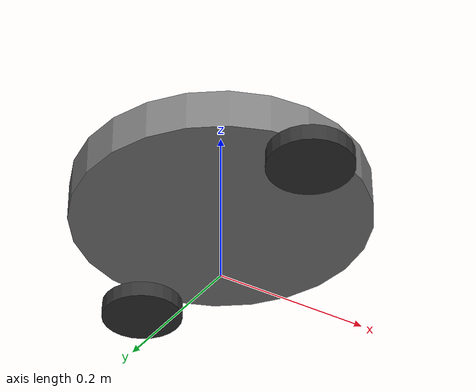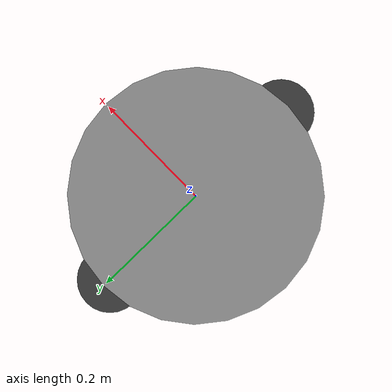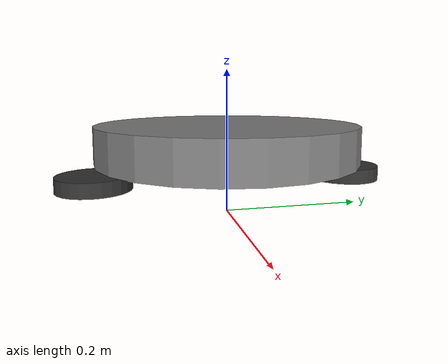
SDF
<?xml version="1.0"?>
<sdf version="1.6">
  <model name="warehouse_bot">
    <static>false</static>

    <!--   Base Link & Body    -->
    <link name="base_link">
      <pose>0 0 0.1 0 0 0</pose>

      <!-- Body collision & visual -->
      <collision name="body_col">
        <geometry>
          <cylinder>
            <radius>0.18</radius>
            <length>0.05</length>
          </cylinder>
        </geometry>
      </collision>
      <visual name="body_vis">
        <geometry>
          <cylinder>
            <radius>0.18</radius>
            <length>0.05</length>
          </cylinder>
        </geometry>
        <material>
          <ambient>0.5 0.5 0.5 1</ambient>
          <diffuse>0.5 0.5 0.5 1</diffuse>
        </material>
      </visual>

      <!-- Inertial -->
      <inertial>
        <mass>5.0</mass>
        <inertia>
          <ixx>0.05</ixx>
          <iyy>0.05</iyy>
          <izz>0.05</izz>
        </inertia>
      </inertial>

      <!-- IMU Sensor -->
      <sensor name="imu_sensor" type="imu">
        <pose>0 0 0 0 0 0</pose>
        <imu>
          <topic>/warehouse_bot/imu/data_raw</topic>
          <gaussianNoise>0.0001</gaussianNoise>
        </imu>
        <plugin name="imu_plugin" filename="libros_gz_imu.so">
          <ros>
            <namespace>warehouse_bot</namespace>
          </ros>
          <topicName>imu/data_raw</topicName>
          <frameId>base_link</frameId>
        </plugin>
      </sensor>

      <!-- Ultrasonic / IR Rangefinders -->
      <sensor name="range_front" type="ray">
        <pose>0.25 0 0.1 0 0 0</pose>
        <ray>
          <scan>
            <horizontal>
              <samples>1</samples>
              <resolution>1</resolution>
              <min_angle>0</min_angle>
              <max_angle>0</max_angle>
            </horizontal>
          </scan>
          <range>
            <min>0.02</min>
            <max>3.0</max>
            <resolution>0.01</resolution>
          </range>
        </ray>
        <plugin name="range_plugin_f" filename="libros_gz_range.so">
          <ros>
            <namespace>warehouse_bot</namespace>
          </ros>
          <topicName>range/front</topicName>
          <frameId>base_link</frameId>
        </plugin>
      </sensor>

      <sensor name="range_left" type="ray">
        <pose>0 0.18 0.1 0 0 1.5708</pose>
        <ray>
          <scan>
            <horizontal>
              <samples>1</samples>
              <resolution>1</resolution>
              <min_angle>0</min_angle>
              <max_angle>0</max_angle>
            </horizontal>
          </scan>
          <range>
            <min>0.02</min>
            <max>3.0</max>
            <resolution>0.01</resolution>
          </range>
        </ray>
        <plugin name="range_plugin_l" filename="libros_gz_range.so">
          <ros>
            <namespace>warehouse_bot</namespace>
          </ros>
          <topicName>range/left</topicName>
          <frameId>base_link</frameId>
        </plugin>
      </sensor>

      <sensor name="range_right" type="ray">
        <pose>0 -0.18 0.1 0 0 -1.5708</pose>
        <ray>
          <scan>
            <horizontal>
              <samples>1</samples>
              <resolution>1</resolution>
              <min_angle>0</min_angle>
              <max_angle>0</max_angle>
            </horizontal>
          </scan>
          <range>
            <min>0.02</min>
            <max>3.0</max>
            <resolution>0.01</resolution>
          </range>
        </ray>
        <plugin name="range_plugin_r" filename="libros_gz_range.so">
          <ros>
            <namespace>warehouse_bot</namespace>
          </ros>
          <topicName>range/right</topicName>
          <frameId>base_link</frameId>
        </plugin>
      </sensor>

    </link>

    <!--    Wheel Assemblies    -->
    <link name="wheel_left">
      <pose>0 0.18 0.05 0 0 0</pose>
      <collision name="col">
        <geometry>
          <cylinder><radius>0.05</radius><length>0.02</length></cylinder>
        </geometry>
      </collision>
      <visual name="vis">
        <geometry>
          <cylinder><radius>0.05</radius><length>0.02</length></cylinder>
        </geometry>
        <material>
          <ambient>0.2 0.2 0.2 1</ambient>
          <diffuse>0.2 0.2 0.2 1</diffuse>
        </material>
      </visual>
      <inertial>
        <mass>0.3</mass>
        <inertia>
          <ixx>0.0005</ixx>
          <iyy>0.0005</iyy>
          <izz>0.0005</izz>
        </inertia>
      </inertial>
    </link>

    <link name="wheel_right">
      <pose>0 -0.18 0.05 0 0 0</pose>
      <collision name="col">
        <geometry>
          <cylinder><radius>0.05</radius><length>0.02</length></cylinder>
        </geometry>
      </collision>
      <visual name="vis">
        <geometry>
          <cylinder><radius>0.05</radius><length>0.02</length></cylinder>
        </geometry>
        <material>
          <ambient>0.2 0.2 0.2 1</ambient>
          <diffuse>0.2 0.2 0.2 1</diffuse>
        </material>
      </visual>
      <inertial>
        <mass>0.3</mass>
        <inertia>
          <ixx>0.0005</ixx>
          <iyy>0.0005</iyy>
          <izz>0.0005</izz>
        </inertia>
      </inertial>
    </link>

    <!--       Wheel Joints     -->
    <joint name="joint_left" type="revolute">
      <parent>base_link</parent>
      <child>wheel_left</child>
      <axis>
        <xyz>0 1 0</xyz>
        <limit>
          <lower>-1000</lower>
          <upper>1000</upper>
        </limit>
      </axis>
    </joint>

    <joint name="joint_right" type="revolute">
      <parent>base_link</parent>
      <child>wheel_right</child>
      <axis>
        <xyz>0 1 0</xyz>
        <limit>
          <lower>-1000</lower>
          <upper>1000</upper>
        </limit>
      </axis>
    </joint>

    <!--  Differential Drive    -->
    <plugin name="diff_drive" filename="libros_gz_diff_drive.so">
      <ros>
        <namespace>warehouse_bot</namespace>
      </ros>
      <leftJoint>joint_left</leftJoint>
      <rightJoint>joint_right</rightJoint>
      <wheelSeparation>0.36</wheelSeparation>
      <wheelDiameter>0.10</wheelDiameter>
      <cmdVelTopic>cmd_vel</cmdVelTopic>
      <frameId>base_link</frameId>
    </plugin>

    <!--    Monocular Camera    -->
    <link name="camera_link">
      <pose>0.20 0 0.30 0 0 0</pose>
      <sensor name="front_camera" type="camera">
        <camera>
          <horizontal_fov>1.047</horizontal_fov>
          <image>
            <width>640</width>
            <height>480</height>
            <format>R8G8B8</format>
          </image>
          <clip>
            <near>0.1</near>
            <far>50.0</far>
          </clip>
        </camera>
        <plugin name="camera_ctrl" filename="libros_gz_camera.so">
          <ros>
            <namespace>warehouse_bot</namespace>
          </ros>
          <imageTopic>image_raw</imageTopic>
          <cameraInfoTopic>camera_info</cameraInfoTopic>
          <frameId>camera_link</frameId>
        </plugin>
      </sensor>
    </link>

  </model>
</sdf>
